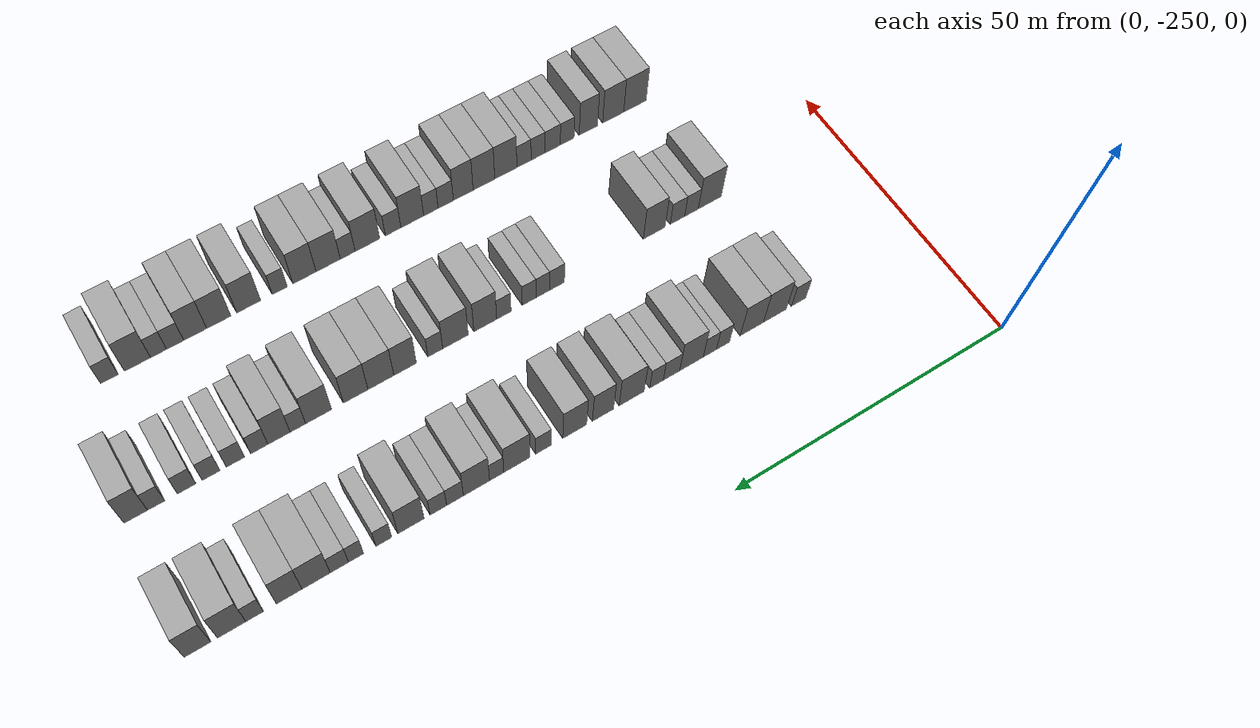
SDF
<sdf version="1.6">
 <world name="default">
  <model name="building_43">
   <static>1</static>
   <pose>25.0000 -226.1350 0 0.000000 0.000000 0.000000</pose>
   <link name="link">
    <pose>0 0 3.00 0 0 0</pose>
    <collision name="collision"><geometry><box><size>10.0000 2.7282 6.0000</size></box></geometry></collision>
    <visual name="visual">
     <cast_shadows>0</cast_shadows>
     <geometry><box><size>10.0000 2.7282 6.0000</size></box></geometry>
     <material>
      <script>
       <uri>model://grey_wall/materials/scripts</uri>
       <uri>model://grey_wall/materials/textures</uri>
       <name>vrc/grey_wall</name>
      </script>
     </material>
    </visual>
   </link>
  </model>
  <model name="building_44">
   <static>1</static>
   <pose>25.0000 -221.6078 0 0.000000 0.000000 0.000000</pose>
   <link name="link">
    <pose>0 0 4.50 0 0 0</pose>
    <collision name="collision"><geometry><box><size>10.0000 4.3262 9.0000</size></box></geometry></collision>
    <visual name="visual">
     <cast_shadows>0</cast_shadows>
     <geometry><box><size>10.0000 4.3262 9.0000</size></box></geometry>
     <material>
      <script>
       <uri>model://grey_wall/materials/scripts</uri>
       <uri>model://grey_wall/materials/textures</uri>
       <name>vrc/grey_wall</name>
      </script>
     </material>
    </visual>
   </link>
  </model>
  <model name="building_45">
   <static>1</static>
   <pose>25.0000 -217.2726 0 0.000000 0.000000 0.000000</pose>
   <link name="link">
    <pose>0 0 4.50 0 0 0</pose>
    <collision name="collision"><geometry><box><size>10.0000 4.3444 9.0000</size></box></geometry></collision>
    <visual name="visual">
     <cast_shadows>0</cast_shadows>
     <geometry><box><size>10.0000 4.3444 9.0000</size></box></geometry>
     <material>
      <script>
       <uri>model://grey_wall/materials/scripts</uri>
       <uri>model://grey_wall/materials/textures</uri>
       <name>vrc/grey_wall</name>
      </script>
     </material>
    </visual>
   </link>
  </model>
  <model name="building_46">
   <static>1</static>
   <pose>25.0000 -211.8780 0 0.000000 0.000000 0.000000</pose>
   <link name="link">
    <pose>0 0 3.00 0 0 0</pose>
    <collision name="collision"><geometry><box><size>10.0000 2.4448 6.0000</size></box></geometry></collision>
    <visual name="visual">
     <cast_shadows>0</cast_shadows>
     <geometry><box><size>10.0000 2.4448 6.0000</size></box></geometry>
     <material>
      <script>
       <uri>model://grey_wall/materials/scripts</uri>
       <uri>model://grey_wall/materials/textures</uri>
       <name>vrc/grey_wall</name>
      </script>
     </material>
    </visual>
   </link>
  </model>
  <model name="building_47">
   <static>1</static>
   <pose>25.0000 -209.4439 0 0.000000 0.000000 0.000000</pose>
   <link name="link">
    <pose>0 0 3.00 0 0 0</pose>
    <collision name="collision"><geometry><box><size>10.0000 2.4233 6.0000</size></box></geometry></collision>
    <visual name="visual">
     <cast_shadows>0</cast_shadows>
     <geometry><box><size>10.0000 2.4233 6.0000</size></box></geometry>
     <material>
      <script>
       <uri>model://grey_wall/materials/scripts</uri>
       <uri>model://grey_wall/materials/textures</uri>
       <name>vrc/grey_wall</name>
      </script>
     </material>
    </visual>
   </link>
  </model>
  <model name="building_48">
   <static>1</static>
   <pose>25.0000 -206.0622 0 0.000000 0.000000 0.000000</pose>
   <link name="link">
    <pose>0 0 4.50 0 0 0</pose>
    <collision name="collision"><geometry><box><size>10.0000 4.3401 9.0000</size></box></geometry></collision>
    <visual name="visual">
     <cast_shadows>0</cast_shadows>
     <geometry><box><size>10.0000 4.3401 9.0000</size></box></geometry>
     <material>
      <script>
       <uri>model://grey_wall/materials/scripts</uri>
       <uri>model://grey_wall/materials/textures</uri>
       <name>vrc/grey_wall</name>
      </script>
     </material>
    </visual>
   </link>
  </model>
  <model name="building_49">
   <static>1</static>
   <pose>25.0000 -202.4076 0 0.000000 0.000000 0.000000</pose>
   <link name="link">
    <pose>0 0 3.00 0 0 0</pose>
    <collision name="collision"><geometry><box><size>10.0000 2.9692 6.0000</size></box></geometry></collision>
    <visual name="visual">
     <cast_shadows>0</cast_shadows>
     <geometry><box><size>10.0000 2.9692 6.0000</size></box></geometry>
     <material>
      <script>
       <uri>model://grey_wall/materials/scripts</uri>
       <uri>model://grey_wall/materials/textures</uri>
       <name>vrc/grey_wall</name>
      </script>
     </material>
    </visual>
   </link>
  </model>
  <model name="building_50">
   <static>1</static>
   <pose>25.0000 -199.6993 0 0.000000 0.000000 0.000000</pose>
   <link name="link">
    <pose>0 0 3.00 0 0 0</pose>
    <collision name="collision"><geometry><box><size>10.0000 2.4473 6.0000</size></box></geometry></collision>
    <visual name="visual">
     <cast_shadows>0</cast_shadows>
     <geometry><box><size>10.0000 2.4473 6.0000</size></box></geometry>
     <material>
      <script>
       <uri>model://grey_wall/materials/scripts</uri>
       <uri>model://grey_wall/materials/textures</uri>
       <name>vrc/grey_wall</name>
      </script>
     </material>
    </visual>
   </link>
  </model>
  <model name="building_51">
   <static>1</static>
   <pose>25.0000 -195.2450 0 0.000000 0.000000 0.000000</pose>
   <link name="link">
    <pose>0 0 4.50 0 0 0</pose>
    <collision name="collision"><geometry><box><size>10.0000 4.4613 9.0000</size></box></geometry></collision>
    <visual name="visual">
     <cast_shadows>0</cast_shadows>
     <geometry><box><size>10.0000 4.4613 9.0000</size></box></geometry>
     <material>
      <script>
       <uri>model://grey_wall/materials/scripts</uri>
       <uri>model://grey_wall/materials/textures</uri>
       <name>vrc/grey_wall</name>
      </script>
     </material>
    </visual>
   </link>
  </model>
  <model name="building_52">
   <static>1</static>
   <pose>25.0000 -190.1384 0 0.000000 0.000000 0.000000</pose>
   <link name="link">
    <pose>0 0 4.50 0 0 0</pose>
    <collision name="collision"><geometry><box><size>10.0000 3.7520 9.0000</size></box></geometry></collision>
    <visual name="visual">
     <cast_shadows>0</cast_shadows>
     <geometry><box><size>10.0000 3.7520 9.0000</size></box></geometry>
     <material>
      <script>
       <uri>model://grey_wall/materials/scripts</uri>
       <uri>model://grey_wall/materials/textures</uri>
       <name>vrc/grey_wall</name>
      </script>
     </material>
    </visual>
   </link>
  </model>
  <model name="building_53">
   <static>1</static>
   <pose>25.0000 -185.1746 0 0.000000 0.000000 0.000000</pose>
   <link name="link">
    <pose>0 0 4.50 0 0 0</pose>
    <collision name="collision"><geometry><box><size>10.0000 4.1755 9.0000</size></box></geometry></collision>
    <visual name="visual">
     <cast_shadows>0</cast_shadows>
     <geometry><box><size>10.0000 4.1755 9.0000</size></box></geometry>
     <material>
      <script>
       <uri>model://grey_wall/materials/scripts</uri>
       <uri>model://grey_wall/materials/textures</uri>
       <name>vrc/grey_wall</name>
      </script>
     </material>
    </visual>
   </link>
  </model>
  <model name="building_54">
   <static>1</static>
   <pose>25.0000 -179.7485 0 0.000000 0.000000 0.000000</pose>
   <link name="link">
    <pose>0 0 3.00 0 0 0</pose>
    <collision name="collision"><geometry><box><size>10.0000 2.6768 6.0000</size></box></geometry></collision>
    <visual name="visual">
     <cast_shadows>0</cast_shadows>
     <geometry><box><size>10.0000 2.6768 6.0000</size></box></geometry>
     <material>
      <script>
       <uri>model://grey_wall/materials/scripts</uri>
       <uri>model://grey_wall/materials/textures</uri>
       <name>vrc/grey_wall</name>
      </script>
     </material>
    </visual>
   </link>
  </model>
  <model name="building_55">
   <static>1</static>
   <pose>25.0000 -175.1819 0 0.000000 0.000000 0.000000</pose>
   <link name="link">
    <pose>0 0 4.50 0 0 0</pose>
    <collision name="collision"><geometry><box><size>10.0000 4.4563 9.0000</size></box></geometry></collision>
    <visual name="visual">
     <cast_shadows>0</cast_shadows>
     <geometry><box><size>10.0000 4.4563 9.0000</size></box></geometry>
     <material>
      <script>
       <uri>model://grey_wall/materials/scripts</uri>
       <uri>model://grey_wall/materials/textures</uri>
       <name>vrc/grey_wall</name>
      </script>
     </material>
    </visual>
   </link>
  </model>
  <model name="building_56">
   <static>1</static>
   <pose>25.0000 -171.7519 0 0.000000 0.000000 0.000000</pose>
   <link name="link">
    <pose>0 0 3.00 0 0 0</pose>
    <collision name="collision"><geometry><box><size>10.0000 2.4038 6.0000</size></box></geometry></collision>
    <visual name="visual">
     <cast_shadows>0</cast_shadows>
     <geometry><box><size>10.0000 2.4038 6.0000</size></box></geometry>
     <material>
      <script>
       <uri>model://grey_wall/materials/scripts</uri>
       <uri>model://grey_wall/materials/textures</uri>
       <name>vrc/grey_wall</name>
      </script>
     </material>
    </visual>
   </link>
  </model>
  <model name="building_57">
   <static>1</static>
   <pose>25.0000 -168.3546 0 0.000000 0.000000 0.000000</pose>
   <link name="link">
    <pose>0 0 4.50 0 0 0</pose>
    <collision name="collision"><geometry><box><size>10.0000 4.3908 9.0000</size></box></geometry></collision>
    <visual name="visual">
     <cast_shadows>0</cast_shadows>
     <geometry><box><size>10.0000 4.3908 9.0000</size></box></geometry>
     <material>
      <script>
       <uri>model://grey_wall/materials/scripts</uri>
       <uri>model://grey_wall/materials/textures</uri>
       <name>vrc/grey_wall</name>
      </script>
     </material>
    </visual>
   </link>
  </model>
  <model name="building_58">
   <static>1</static>
   <pose>25.0000 -164.7590 0 0.000000 0.000000 0.000000</pose>
   <link name="link">
    <pose>0 0 3.00 0 0 0</pose>
    <collision name="collision"><geometry><box><size>10.0000 2.8005 6.0000</size></box></geometry></collision>
    <visual name="visual">
     <cast_shadows>0</cast_shadows>
     <geometry><box><size>10.0000 2.8005 6.0000</size></box></geometry>
     <material>
      <script>
       <uri>model://grey_wall/materials/scripts</uri>
       <uri>model://grey_wall/materials/textures</uri>
       <name>vrc/grey_wall</name>
      </script>
     </material>
    </visual>
   </link>
  </model>
  <model name="building_59">
   <static>1</static>
   <pose>25.0000 -161.9979 0 0.000000 0.000000 0.000000</pose>
   <link name="link">
    <pose>0 0 3.00 0 0 0</pose>
    <collision name="collision"><geometry><box><size>10.0000 2.7217 6.0000</size></box></geometry></collision>
    <visual name="visual">
     <cast_shadows>0</cast_shadows>
     <geometry><box><size>10.0000 2.7217 6.0000</size></box></geometry>
     <material>
      <script>
       <uri>model://grey_wall/materials/scripts</uri>
       <uri>model://grey_wall/materials/textures</uri>
       <name>vrc/grey_wall</name>
      </script>
     </material>
    </visual>
   </link>
  </model>
  <model name="building_60">
   <static>1</static>
   <pose>25.0000 -157.4892 0 0.000000 0.000000 0.000000</pose>
   <link name="link">
    <pose>0 0 4.50 0 0 0</pose>
    <collision name="collision"><geometry><box><size>10.0000 4.2958 9.0000</size></box></geometry></collision>
    <visual name="visual">
     <cast_shadows>0</cast_shadows>
     <geometry><box><size>10.0000 4.2958 9.0000</size></box></geometry>
     <material>
      <script>
       <uri>model://grey_wall/materials/scripts</uri>
       <uri>model://grey_wall/materials/textures</uri>
       <name>vrc/grey_wall</name>
      </script>
     </material>
    </visual>
   </link>
  </model>
  <model name="building_61">
   <static>1</static>
   <pose>25.0000 -153.0648 0 0.000000 0.000000 0.000000</pose>
   <link name="link">
    <pose>0 0 3.00 0 0 0</pose>
    <collision name="collision"><geometry><box><size>10.0000 2.5529 6.0000</size></box></geometry></collision>
    <visual name="visual">
     <cast_shadows>0</cast_shadows>
     <geometry><box><size>10.0000 2.5529 6.0000</size></box></geometry>
     <material>
      <script>
       <uri>model://grey_wall/materials/scripts</uri>
       <uri>model://grey_wall/materials/textures</uri>
       <name>vrc/grey_wall</name>
      </script>
     </material>
    </visual>
   </link>
  </model>
  <model name="building_62">
   <static>1</static>
   <pose>25.0000 -148.5823 0 0.000000 0.000000 0.000000</pose>
   <link name="link">
    <pose>0 0 3.00 0 0 0</pose>
    <collision name="collision"><geometry><box><size>10.0000 2.4120 6.0000</size></box></geometry></collision>
    <visual name="visual">
     <cast_shadows>0</cast_shadows>
     <geometry><box><size>10.0000 2.4120 6.0000</size></box></geometry>
     <material>
      <script>
       <uri>model://grey_wall/materials/scripts</uri>
       <uri>model://grey_wall/materials/textures</uri>
       <name>vrc/grey_wall</name>
      </script>
     </material>
    </visual>
   </link>
  </model>
  <model name="building_63">
   <static>1</static>
   <pose>25.0000 -145.9216 0 0.000000 0.000000 0.000000</pose>
   <link name="link">
    <pose>0 0 3.00 0 0 0</pose>
    <collision name="collision"><geometry><box><size>10.0000 2.9093 6.0000</size></box></geometry></collision>
    <visual name="visual">
     <cast_shadows>0</cast_shadows>
     <geometry><box><size>10.0000 2.9093 6.0000</size></box></geometry>
     <material>
      <script>
       <uri>model://grey_wall/materials/scripts</uri>
       <uri>model://grey_wall/materials/textures</uri>
       <name>vrc/grey_wall</name>
      </script>
     </material>
    </visual>
   </link>
  </model>
  <model name="building_64">
   <static>1</static>
   <pose>25.0000 -142.2396 0 0.000000 0.000000 0.000000</pose>
   <link name="link">
    <pose>0 0 4.50 0 0 0</pose>
    <collision name="collision"><geometry><box><size>10.0000 4.4547 9.0000</size></box></geometry></collision>
    <visual name="visual">
     <cast_shadows>0</cast_shadows>
     <geometry><box><size>10.0000 4.4547 9.0000</size></box></geometry>
     <material>
      <script>
       <uri>model://grey_wall/materials/scripts</uri>
       <uri>model://grey_wall/materials/textures</uri>
       <name>vrc/grey_wall</name>
      </script>
     </material>
    </visual>
   </link>
  </model>
  <model name="building_65">
   <static>1</static>
   <pose>25.0000 -138.0126 0 0.000000 0.000000 0.000000</pose>
   <link name="link">
    <pose>0 0 4.50 0 0 0</pose>
    <collision name="collision"><geometry><box><size>10.0000 3.9993 9.0000</size></box></geometry></collision>
    <visual name="visual">
     <cast_shadows>0</cast_shadows>
     <geometry><box><size>10.0000 3.9993 9.0000</size></box></geometry>
     <material>
      <script>
       <uri>model://grey_wall/materials/scripts</uri>
       <uri>model://grey_wall/materials/textures</uri>
       <name>vrc/grey_wall</name>
      </script>
     </material>
    </visual>
   </link>
  </model>
  <model name="building_66">
   <static>1</static>
   <pose>25.0000 -132.6591 0 0.000000 0.000000 0.000000</pose>
   <link name="link">
    <pose>0 0 3.00 0 0 0</pose>
    <collision name="collision"><geometry><box><size>10.0000 2.7078 6.0000</size></box></geometry></collision>
    <visual name="visual">
     <cast_shadows>0</cast_shadows>
     <geometry><box><size>10.0000 2.7078 6.0000</size></box></geometry>
     <material>
      <script>
       <uri>model://grey_wall/materials/scripts</uri>
       <uri>model://grey_wall/materials/textures</uri>
       <name>vrc/grey_wall</name>
      </script>
     </material>
    </visual>
   </link>
  </model>
  <model name="building_67">
   <static>1</static>
   <pose>25.0000 -129.1272 0 0.000000 0.000000 0.000000</pose>
   <link name="link">
    <pose>0 0 4.50 0 0 0</pose>
    <collision name="collision"><geometry><box><size>10.0000 4.3559 9.0000</size></box></geometry></collision>
    <visual name="visual">
     <cast_shadows>0</cast_shadows>
     <geometry><box><size>10.0000 4.3559 9.0000</size></box></geometry>
     <material>
      <script>
       <uri>model://grey_wall/materials/scripts</uri>
       <uri>model://grey_wall/materials/textures</uri>
       <name>vrc/grey_wall</name>
      </script>
     </material>
    </visual>
   </link>
  </model>
  <model name="building_68">
   <static>1</static>
   <pose>25.0000 -123.9400 0 0.000000 0.000000 0.000000</pose>
   <link name="link">
    <pose>0 0 4.50 0 0 0</pose>
    <collision name="collision"><geometry><box><size>10.0000 4.0185 9.0000</size></box></geometry></collision>
    <visual name="visual">
     <cast_shadows>0</cast_shadows>
     <geometry><box><size>10.0000 4.0185 9.0000</size></box></geometry>
     <material>
      <script>
       <uri>model://grey_wall/materials/scripts</uri>
       <uri>model://grey_wall/materials/textures</uri>
       <name>vrc/grey_wall</name>
      </script>
     </material>
    </visual>
   </link>
  </model>
  <model name="building_230">
   <static>1</static>
   <pose>47.0000 -224.7987 0 0.000000 0.000000 0.000000</pose>
   <link name="link">
    <pose>0 0 4.50 0 0 0</pose>
    <collision name="collision"><geometry><box><size>10.0000 4.4797 9.0000</size></box></geometry></collision>
    <visual name="visual">
     <cast_shadows>0</cast_shadows>
     <geometry><box><size>10.0000 4.4797 9.0000</size></box></geometry>
     <material>
      <script>
       <uri>model://grey_wall/materials/scripts</uri>
       <uri>model://grey_wall/materials/textures</uri>
       <name>vrc/grey_wall</name>
      </script>
     </material>
    </visual>
   </link>
  </model>
  <model name="building_231">
   <static>1</static>
   <pose>47.0000 -221.2381 0 0.000000 0.000000 0.000000</pose>
   <link name="link">
    <pose>0 0 3.00 0 0 0</pose>
    <collision name="collision"><geometry><box><size>10.0000 2.6415 6.0000</size></box></geometry></collision>
    <visual name="visual">
     <cast_shadows>0</cast_shadows>
     <geometry><box><size>10.0000 2.6415 6.0000</size></box></geometry>
     <material>
      <script>
       <uri>model://grey_wall/materials/scripts</uri>
       <uri>model://grey_wall/materials/textures</uri>
       <name>vrc/grey_wall</name>
      </script>
     </material>
    </visual>
   </link>
  </model>
  <model name="building_232">
   <static>1</static>
   <pose>47.0000 -218.5318 0 0.000000 0.000000 0.000000</pose>
   <link name="link">
    <pose>0 0 3.00 0 0 0</pose>
    <collision name="collision"><geometry><box><size>10.0000 2.7711 6.0000</size></box></geometry></collision>
    <visual name="visual">
     <cast_shadows>0</cast_shadows>
     <geometry><box><size>10.0000 2.7711 6.0000</size></box></geometry>
     <material>
      <script>
       <uri>model://grey_wall/materials/scripts</uri>
       <uri>model://grey_wall/materials/textures</uri>
       <name>vrc/grey_wall</name>
      </script>
     </material>
    </visual>
   </link>
  </model>
  <model name="building_233">
   <static>1</static>
   <pose>47.0000 -214.0724 0 0.000000 0.000000 0.000000</pose>
   <link name="link">
    <pose>0 0 4.50 0 0 0</pose>
    <collision name="collision"><geometry><box><size>10.0000 4.1477 9.0000</size></box></geometry></collision>
    <visual name="visual">
     <cast_shadows>0</cast_shadows>
     <geometry><box><size>10.0000 4.1477 9.0000</size></box></geometry>
     <material>
      <script>
       <uri>model://grey_wall/materials/scripts</uri>
       <uri>model://grey_wall/materials/textures</uri>
       <name>vrc/grey_wall</name>
      </script>
     </material>
    </visual>
   </link>
  </model>
  <model name="building_234">
   <static>1</static>
   <pose>47.0000 -195.8662 0 0.000000 0.000000 0.000000</pose>
   <link name="link">
    <pose>0 0 3.00 0 0 0</pose>
    <collision name="collision"><geometry><box><size>10.0000 2.7549 6.0000</size></box></geometry></collision>
    <visual name="visual">
     <cast_shadows>0</cast_shadows>
     <geometry><box><size>10.0000 2.7549 6.0000</size></box></geometry>
     <material>
      <script>
       <uri>model://grey_wall/materials/scripts</uri>
       <uri>model://grey_wall/materials/textures</uri>
       <name>vrc/grey_wall</name>
      </script>
     </material>
    </visual>
   </link>
  </model>
  <model name="building_235">
   <static>1</static>
   <pose>47.0000 -193.2576 0 0.000000 0.000000 0.000000</pose>
   <link name="link">
    <pose>0 0 3.00 0 0 0</pose>
    <collision name="collision"><geometry><box><size>10.0000 2.4623 6.0000</size></box></geometry></collision>
    <visual name="visual">
     <cast_shadows>0</cast_shadows>
     <geometry><box><size>10.0000 2.4623 6.0000</size></box></geometry>
     <material>
      <script>
       <uri>model://grey_wall/materials/scripts</uri>
       <uri>model://grey_wall/materials/textures</uri>
       <name>vrc/grey_wall</name>
      </script>
     </material>
    </visual>
   </link>
  </model>
  <model name="building_236">
   <static>1</static>
   <pose>47.0000 -190.7903 0 0.000000 0.000000 0.000000</pose>
   <link name="link">
    <pose>0 0 3.00 0 0 0</pose>
    <collision name="collision"><geometry><box><size>10.0000 2.4723 6.0000</size></box></geometry></collision>
    <visual name="visual">
     <cast_shadows>0</cast_shadows>
     <geometry><box><size>10.0000 2.4723 6.0000</size></box></geometry>
     <material>
      <script>
       <uri>model://grey_wall/materials/scripts</uri>
       <uri>model://grey_wall/materials/textures</uri>
       <name>vrc/grey_wall</name>
      </script>
     </material>
    </visual>
   </link>
  </model>
  <model name="building_237">
   <static>1</static>
   <pose>47.0000 -186.2572 0 0.000000 0.000000 0.000000</pose>
   <link name="link">
    <pose>0 0 3.00 0 0 0</pose>
    <collision name="collision"><geometry><box><size>10.0000 2.5938 6.0000</size></box></geometry></collision>
    <visual name="visual">
     <cast_shadows>0</cast_shadows>
     <geometry><box><size>10.0000 2.5938 6.0000</size></box></geometry>
     <material>
      <script>
       <uri>model://grey_wall/materials/scripts</uri>
       <uri>model://grey_wall/materials/textures</uri>
       <name>vrc/grey_wall</name>
      </script>
     </material>
    </visual>
   </link>
  </model>
  <model name="building_238">
   <static>1</static>
   <pose>47.0000 -182.9309 0 0.000000 0.000000 0.000000</pose>
   <link name="link">
    <pose>0 0 4.50 0 0 0</pose>
    <collision name="collision"><geometry><box><size>10.0000 4.0588 9.0000</size></box></geometry></collision>
    <visual name="visual">
     <cast_shadows>0</cast_shadows>
     <geometry><box><size>10.0000 4.0588 9.0000</size></box></geometry>
     <material>
      <script>
       <uri>model://grey_wall/materials/scripts</uri>
       <uri>model://grey_wall/materials/textures</uri>
       <name>vrc/grey_wall</name>
      </script>
     </material>
    </visual>
   </link>
  </model>
  <model name="building_239">
   <static>1</static>
   <pose>47.0000 -177.6561 0 0.000000 0.000000 0.000000</pose>
   <link name="link">
    <pose>0 0 4.50 0 0 0</pose>
    <collision name="collision"><geometry><box><size>10.0000 4.4907 9.0000</size></box></geometry></collision>
    <visual name="visual">
     <cast_shadows>0</cast_shadows>
     <geometry><box><size>10.0000 4.4907 9.0000</size></box></geometry>
     <material>
      <script>
       <uri>model://grey_wall/materials/scripts</uri>
       <uri>model://grey_wall/materials/textures</uri>
       <name>vrc/grey_wall</name>
      </script>
     </material>
    </visual>
   </link>
  </model>
  <model name="building_240">
   <static>1</static>
   <pose>47.0000 -174.1131 0 0.000000 0.000000 0.000000</pose>
   <link name="link">
    <pose>0 0 3.00 0 0 0</pose>
    <collision name="collision"><geometry><box><size>10.0000 2.5953 6.0000</size></box></geometry></collision>
    <visual name="visual">
     <cast_shadows>0</cast_shadows>
     <geometry><box><size>10.0000 2.5953 6.0000</size></box></geometry>
     <material>
      <script>
       <uri>model://grey_wall/materials/scripts</uri>
       <uri>model://grey_wall/materials/textures</uri>
       <name>vrc/grey_wall</name>
      </script>
     </material>
    </visual>
   </link>
  </model>
  <model name="building_241">
   <static>1</static>
   <pose>47.0000 -168.8720 0 0.000000 0.000000 0.000000</pose>
   <link name="link">
    <pose>0 0 4.50 0 0 0</pose>
    <collision name="collision"><geometry><box><size>10.0000 3.8868 9.0000</size></box></geometry></collision>
    <visual name="visual">
     <cast_shadows>0</cast_shadows>
     <geometry><box><size>10.0000 3.8868 9.0000</size></box></geometry>
     <material>
      <script>
       <uri>model://grey_wall/materials/scripts</uri>
       <uri>model://grey_wall/materials/textures</uri>
       <name>vrc/grey_wall</name>
      </script>
     </material>
    </visual>
   </link>
  </model>
  <model name="building_242">
   <static>1</static>
   <pose>47.0000 -164.7085 0 0.000000 0.000000 0.000000</pose>
   <link name="link">
    <pose>0 0 4.50 0 0 0</pose>
    <collision name="collision"><geometry><box><size>10.0000 4.4403 9.0000</size></box></geometry></collision>
    <visual name="visual">
     <cast_shadows>0</cast_shadows>
     <geometry><box><size>10.0000 4.4403 9.0000</size></box></geometry>
     <material>
      <script>
       <uri>model://grey_wall/materials/scripts</uri>
       <uri>model://grey_wall/materials/textures</uri>
       <name>vrc/grey_wall</name>
      </script>
     </material>
    </visual>
   </link>
  </model>
  <model name="building_243">
   <static>1</static>
   <pose>47.0000 -160.4121 0 0.000000 0.000000 0.000000</pose>
   <link name="link">
    <pose>0 0 4.50 0 0 0</pose>
    <collision name="collision"><geometry><box><size>10.0000 4.1526 9.0000</size></box></geometry></collision>
    <visual name="visual">
     <cast_shadows>0</cast_shadows>
     <geometry><box><size>10.0000 4.1526 9.0000</size></box></geometry>
     <material>
      <script>
       <uri>model://grey_wall/materials/scripts</uri>
       <uri>model://grey_wall/materials/textures</uri>
       <name>vrc/grey_wall</name>
      </script>
     </material>
    </visual>
   </link>
  </model>
  <model name="building_244">
   <static>1</static>
   <pose>47.0000 -154.1732 0 0.000000 0.000000 0.000000</pose>
   <link name="link">
    <pose>0 0 4.50 0 0 0</pose>
    <collision name="collision"><geometry><box><size>10.0000 4.3251 9.0000</size></box></geometry></collision>
    <visual name="visual">
     <cast_shadows>0</cast_shadows>
     <geometry><box><size>10.0000 4.3251 9.0000</size></box></geometry>
     <material>
      <script>
       <uri>model://grey_wall/materials/scripts</uri>
       <uri>model://grey_wall/materials/textures</uri>
       <name>vrc/grey_wall</name>
      </script>
     </material>
    </visual>
   </link>
  </model>
  <model name="building_245">
   <static>1</static>
   <pose>47.0000 -150.7242 0 0.000000 0.000000 0.000000</pose>
   <link name="link">
    <pose>0 0 3.00 0 0 0</pose>
    <collision name="collision"><geometry><box><size>10.0000 2.5729 6.0000</size></box></geometry></collision>
    <visual name="visual">
     <cast_shadows>0</cast_shadows>
     <geometry><box><size>10.0000 2.5729 6.0000</size></box></geometry>
     <material>
      <script>
       <uri>model://grey_wall/materials/scripts</uri>
       <uri>model://grey_wall/materials/textures</uri>
       <name>vrc/grey_wall</name>
      </script>
     </material>
    </visual>
   </link>
  </model>
  <model name="building_246">
   <static>1</static>
   <pose>47.0000 -147.6063 0 0.000000 0.000000 0.000000</pose>
   <link name="link">
    <pose>0 0 4.50 0 0 0</pose>
    <collision name="collision"><geometry><box><size>10.0000 3.6629 9.0000</size></box></geometry></collision>
    <visual name="visual">
     <cast_shadows>0</cast_shadows>
     <geometry><box><size>10.0000 3.6629 9.0000</size></box></geometry>
     <material>
      <script>
       <uri>model://grey_wall/materials/scripts</uri>
       <uri>model://grey_wall/materials/textures</uri>
       <name>vrc/grey_wall</name>
      </script>
     </material>
    </visual>
   </link>
  </model>
  <model name="building_247">
   <static>1</static>
   <pose>47.0000 -144.3744 0 0.000000 0.000000 0.000000</pose>
   <link name="link">
    <pose>0 0 3.00 0 0 0</pose>
    <collision name="collision"><geometry><box><size>10.0000 2.8009 6.0000</size></box></geometry></collision>
    <visual name="visual">
     <cast_shadows>0</cast_shadows>
     <geometry><box><size>10.0000 2.8009 6.0000</size></box></geometry>
     <material>
      <script>
       <uri>model://grey_wall/materials/scripts</uri>
       <uri>model://grey_wall/materials/textures</uri>
       <name>vrc/grey_wall</name>
      </script>
     </material>
    </visual>
   </link>
  </model>
  <model name="building_248">
   <static>1</static>
   <pose>47.0000 -140.4943 0 0.000000 0.000000 0.000000</pose>
   <link name="link">
    <pose>0 0 3.00 0 0 0</pose>
    <collision name="collision"><geometry><box><size>10.0000 2.9593 6.0000</size></box></geometry></collision>
    <visual name="visual">
     <cast_shadows>0</cast_shadows>
     <geometry><box><size>10.0000 2.9593 6.0000</size></box></geometry>
     <material>
      <script>
       <uri>model://grey_wall/materials/scripts</uri>
       <uri>model://grey_wall/materials/textures</uri>
       <name>vrc/grey_wall</name>
      </script>
     </material>
    </visual>
   </link>
  </model>
  <model name="building_249">
   <static>1</static>
   <pose>47.0000 -136.5808 0 0.000000 0.000000 0.000000</pose>
   <link name="link">
    <pose>0 0 3.00 0 0 0</pose>
    <collision name="collision"><geometry><box><size>10.0000 2.8676 6.0000</size></box></geometry></collision>
    <visual name="visual">
     <cast_shadows>0</cast_shadows>
     <geometry><box><size>10.0000 2.8676 6.0000</size></box></geometry>
     <material>
      <script>
       <uri>model://grey_wall/materials/scripts</uri>
       <uri>model://grey_wall/materials/textures</uri>
       <name>vrc/grey_wall</name>
      </script>
     </material>
    </visual>
   </link>
  </model>
  <model name="building_250">
   <static>1</static>
   <pose>47.0000 -132.6794 0 0.000000 0.000000 0.000000</pose>
   <link name="link">
    <pose>0 0 3.00 0 0 0</pose>
    <collision name="collision"><geometry><box><size>10.0000 2.9351 6.0000</size></box></geometry></collision>
    <visual name="visual">
     <cast_shadows>0</cast_shadows>
     <geometry><box><size>10.0000 2.9351 6.0000</size></box></geometry>
     <material>
      <script>
       <uri>model://grey_wall/materials/scripts</uri>
       <uri>model://grey_wall/materials/textures</uri>
       <name>vrc/grey_wall</name>
      </script>
     </material>
    </visual>
   </link>
  </model>
  <model name="building_251">
   <static>1</static>
   <pose>47.0000 -127.8619 0 0.000000 0.000000 0.000000</pose>
   <link name="link">
    <pose>0 0 3.00 0 0 0</pose>
    <collision name="collision"><geometry><box><size>10.0000 2.7000 6.0000</size></box></geometry></collision>
    <visual name="visual">
     <cast_shadows>0</cast_shadows>
     <geometry><box><size>10.0000 2.7000 6.0000</size></box></geometry>
     <material>
      <script>
       <uri>model://grey_wall/materials/scripts</uri>
       <uri>model://grey_wall/materials/textures</uri>
       <name>vrc/grey_wall</name>
      </script>
     </material>
    </visual>
   </link>
  </model>
  <model name="building_252">
   <static>1</static>
   <pose>47.0000 -124.6702 0 0.000000 0.000000 0.000000</pose>
   <link name="link">
    <pose>0 0 4.50 0 0 0</pose>
    <collision name="collision"><geometry><box><size>10.0000 3.6834 9.0000</size></box></geometry></collision>
    <visual name="visual">
     <cast_shadows>0</cast_shadows>
     <geometry><box><size>10.0000 3.6834 9.0000</size></box></geometry>
     <material>
      <script>
       <uri>model://grey_wall/materials/scripts</uri>
       <uri>model://grey_wall/materials/textures</uri>
       <name>vrc/grey_wall</name>
      </script>
     </material>
    </visual>
   </link>
  </model>
  <model name="building_421">
   <static>1</static>
   <pose>69.0000 -225.0023 0 0.000000 0.000000 0.000000</pose>
   <link name="link">
    <pose>0 0 4.50 0 0 0</pose>
    <collision name="collision"><geometry><box><size>10.0000 4.4633 9.0000</size></box></geometry></collision>
    <visual name="visual">
     <cast_shadows>0</cast_shadows>
     <geometry><box><size>10.0000 4.4633 9.0000</size></box></geometry>
     <material>
      <script>
       <uri>model://grey_wall/materials/scripts</uri>
       <uri>model://grey_wall/materials/textures</uri>
       <name>vrc/grey_wall</name>
      </script>
     </material>
    </visual>
   </link>
  </model>
  <model name="building_422">
   <static>1</static>
   <pose>69.0000 -220.6876 0 0.000000 0.000000 0.000000</pose>
   <link name="link">
    <pose>0 0 4.50 0 0 0</pose>
    <collision name="collision"><geometry><box><size>10.0000 4.1661 9.0000</size></box></geometry></collision>
    <visual name="visual">
     <cast_shadows>0</cast_shadows>
     <geometry><box><size>10.0000 4.1661 9.0000</size></box></geometry>
     <material>
      <script>
       <uri>model://grey_wall/materials/scripts</uri>
       <uri>model://grey_wall/materials/textures</uri>
       <name>vrc/grey_wall</name>
      </script>
     </material>
    </visual>
   </link>
  </model>
  <model name="building_423">
   <static>1</static>
   <pose>69.0000 -215.8008 0 0.000000 0.000000 0.000000</pose>
   <link name="link">
    <pose>0 0 4.50 0 0 0</pose>
    <collision name="collision"><geometry><box><size>10.0000 3.6074 9.0000</size></box></geometry></collision>
    <visual name="visual">
     <cast_shadows>0</cast_shadows>
     <geometry><box><size>10.0000 3.6074 9.0000</size></box></geometry>
     <material>
      <script>
       <uri>model://grey_wall/materials/scripts</uri>
       <uri>model://grey_wall/materials/textures</uri>
       <name>vrc/grey_wall</name>
      </script>
     </material>
    </visual>
   </link>
  </model>
  <model name="building_424">
   <static>1</static>
   <pose>69.0000 -211.6582 0 0.000000 0.000000 0.000000</pose>
   <link name="link">
    <pose>0 0 3.00 0 0 0</pose>
    <collision name="collision"><geometry><box><size>10.0000 2.6779 6.0000</size></box></geometry></collision>
    <visual name="visual">
     <cast_shadows>0</cast_shadows>
     <geometry><box><size>10.0000 2.6779 6.0000</size></box></geometry>
     <material>
      <script>
       <uri>model://grey_wall/materials/scripts</uri>
       <uri>model://grey_wall/materials/textures</uri>
       <name>vrc/grey_wall</name>
      </script>
     </material>
    </visual>
   </link>
  </model>
  <model name="building_425">
   <static>1</static>
   <pose>69.0000 -208.8410 0 0.000000 0.000000 0.000000</pose>
   <link name="link">
    <pose>0 0 3.00 0 0 0</pose>
    <collision name="collision"><geometry><box><size>10.0000 2.9564 6.0000</size></box></geometry></collision>
    <visual name="visual">
     <cast_shadows>0</cast_shadows>
     <geometry><box><size>10.0000 2.9564 6.0000</size></box></geometry>
     <material>
      <script>
       <uri>model://grey_wall/materials/scripts</uri>
       <uri>model://grey_wall/materials/textures</uri>
       <name>vrc/grey_wall</name>
      </script>
     </material>
    </visual>
   </link>
  </model>
  <model name="building_426">
   <static>1</static>
   <pose>69.0000 -206.0336 0 0.000000 0.000000 0.000000</pose>
   <link name="link">
    <pose>0 0 3.00 0 0 0</pose>
    <collision name="collision"><geometry><box><size>10.0000 2.6584 6.0000</size></box></geometry></collision>
    <visual name="visual">
     <cast_shadows>0</cast_shadows>
     <geometry><box><size>10.0000 2.6584 6.0000</size></box></geometry>
     <material>
      <script>
       <uri>model://grey_wall/materials/scripts</uri>
       <uri>model://grey_wall/materials/textures</uri>
       <name>vrc/grey_wall</name>
      </script>
     </material>
    </visual>
   </link>
  </model>
  <model name="building_427">
   <static>1</static>
   <pose>69.0000 -203.3512 0 0.000000 0.000000 0.000000</pose>
   <link name="link">
    <pose>0 0 3.00 0 0 0</pose>
    <collision name="collision"><geometry><box><size>10.0000 2.7062 6.0000</size></box></geometry></collision>
    <visual name="visual">
     <cast_shadows>0</cast_shadows>
     <geometry><box><size>10.0000 2.7062 6.0000</size></box></geometry>
     <material>
      <script>
       <uri>model://grey_wall/materials/scripts</uri>
       <uri>model://grey_wall/materials/textures</uri>
       <name>vrc/grey_wall</name>
      </script>
     </material>
    </visual>
   </link>
  </model>
  <model name="building_428">
   <static>1</static>
   <pose>69.0000 -199.8991 0 0.000000 0.000000 0.000000</pose>
   <link name="link">
    <pose>0 0 4.50 0 0 0</pose>
    <collision name="collision"><geometry><box><size>10.0000 4.1981 9.0000</size></box></geometry></collision>
    <visual name="visual">
     <cast_shadows>0</cast_shadows>
     <geometry><box><size>10.0000 4.1981 9.0000</size></box></geometry>
     <material>
      <script>
       <uri>model://grey_wall/materials/scripts</uri>
       <uri>model://grey_wall/materials/textures</uri>
       <name>vrc/grey_wall</name>
      </script>
     </material>
    </visual>
   </link>
  </model>
  <model name="building_429">
   <static>1</static>
   <pose>69.0000 -195.7734 0 0.000000 0.000000 0.000000</pose>
   <link name="link">
    <pose>0 0 4.50 0 0 0</pose>
    <collision name="collision"><geometry><box><size>10.0000 4.0534 9.0000</size></box></geometry></collision>
    <visual name="visual">
     <cast_shadows>0</cast_shadows>
     <geometry><box><size>10.0000 4.0534 9.0000</size></box></geometry>
     <material>
      <script>
       <uri>model://grey_wall/materials/scripts</uri>
       <uri>model://grey_wall/materials/textures</uri>
       <name>vrc/grey_wall</name>
      </script>
     </material>
    </visual>
   </link>
  </model>
  <model name="building_430">
   <static>1</static>
   <pose>69.0000 -191.9109 0 0.000000 0.000000 0.000000</pose>
   <link name="link">
    <pose>0 0 4.50 0 0 0</pose>
    <collision name="collision"><geometry><box><size>10.0000 3.6714 9.0000</size></box></geometry></collision>
    <visual name="visual">
     <cast_shadows>0</cast_shadows>
     <geometry><box><size>10.0000 3.6714 9.0000</size></box></geometry>
     <material>
      <script>
       <uri>model://grey_wall/materials/scripts</uri>
       <uri>model://grey_wall/materials/textures</uri>
       <name>vrc/grey_wall</name>
      </script>
     </material>
    </visual>
   </link>
  </model>
  <model name="building_431">
   <static>1</static>
   <pose>69.0000 -188.6621 0 0.000000 0.000000 0.000000</pose>
   <link name="link">
    <pose>0 0 3.00 0 0 0</pose>
    <collision name="collision"><geometry><box><size>10.0000 2.8263 6.0000</size></box></geometry></collision>
    <visual name="visual">
     <cast_shadows>0</cast_shadows>
     <geometry><box><size>10.0000 2.8263 6.0000</size></box></geometry>
     <material>
      <script>
       <uri>model://grey_wall/materials/scripts</uri>
       <uri>model://grey_wall/materials/textures</uri>
       <name>vrc/grey_wall</name>
      </script>
     </material>
    </visual>
   </link>
  </model>
  <model name="building_432">
   <static>1</static>
   <pose>69.0000 -185.9165 0 0.000000 0.000000 0.000000</pose>
   <link name="link">
    <pose>0 0 3.00 0 0 0</pose>
    <collision name="collision"><geometry><box><size>10.0000 2.6648 6.0000</size></box></geometry></collision>
    <visual name="visual">
     <cast_shadows>0</cast_shadows>
     <geometry><box><size>10.0000 2.6648 6.0000</size></box></geometry>
     <material>
      <script>
       <uri>model://grey_wall/materials/scripts</uri>
       <uri>model://grey_wall/materials/textures</uri>
       <name>vrc/grey_wall</name>
      </script>
     </material>
    </visual>
   </link>
  </model>
  <model name="building_433">
   <static>1</static>
   <pose>69.0000 -182.5091 0 0.000000 0.000000 0.000000</pose>
   <link name="link">
    <pose>0 0 4.50 0 0 0</pose>
    <collision name="collision"><geometry><box><size>10.0000 4.1502 9.0000</size></box></geometry></collision>
    <visual name="visual">
     <cast_shadows>0</cast_shadows>
     <geometry><box><size>10.0000 4.1502 9.0000</size></box></geometry>
     <material>
      <script>
       <uri>model://grey_wall/materials/scripts</uri>
       <uri>model://grey_wall/materials/textures</uri>
       <name>vrc/grey_wall</name>
      </script>
     </material>
    </visual>
   </link>
  </model>
  <model name="building_434">
   <static>1</static>
   <pose>69.0000 -179.0233 0 0.000000 0.000000 0.000000</pose>
   <link name="link">
    <pose>0 0 3.00 0 0 0</pose>
    <collision name="collision"><geometry><box><size>10.0000 2.8214 6.0000</size></box></geometry></collision>
    <visual name="visual">
     <cast_shadows>0</cast_shadows>
     <geometry><box><size>10.0000 2.8214 6.0000</size></box></geometry>
     <material>
      <script>
       <uri>model://grey_wall/materials/scripts</uri>
       <uri>model://grey_wall/materials/textures</uri>
       <name>vrc/grey_wall</name>
      </script>
     </material>
    </visual>
   </link>
  </model>
  <model name="building_435">
   <static>1</static>
   <pose>69.0000 -174.4017 0 0.000000 0.000000 0.000000</pose>
   <link name="link">
    <pose>0 0 4.50 0 0 0</pose>
    <collision name="collision"><geometry><box><size>10.0000 4.4218 9.0000</size></box></geometry></collision>
    <visual name="visual">
     <cast_shadows>0</cast_shadows>
     <geometry><box><size>10.0000 4.4218 9.0000</size></box></geometry>
     <material>
      <script>
       <uri>model://grey_wall/materials/scripts</uri>
       <uri>model://grey_wall/materials/textures</uri>
       <name>vrc/grey_wall</name>
      </script>
     </material>
    </visual>
   </link>
  </model>
  <model name="building_436">
   <static>1</static>
   <pose>69.0000 -170.8653 0 0.000000 0.000000 0.000000</pose>
   <link name="link">
    <pose>0 0 3.00 0 0 0</pose>
    <collision name="collision"><geometry><box><size>10.0000 2.6510 6.0000</size></box></geometry></collision>
    <visual name="visual">
     <cast_shadows>0</cast_shadows>
     <geometry><box><size>10.0000 2.6510 6.0000</size></box></geometry>
     <material>
      <script>
       <uri>model://grey_wall/materials/scripts</uri>
       <uri>model://grey_wall/materials/textures</uri>
       <name>vrc/grey_wall</name>
      </script>
     </material>
    </visual>
   </link>
  </model>
  <model name="building_437">
   <static>1</static>
   <pose>69.0000 -167.3984 0 0.000000 0.000000 0.000000</pose>
   <link name="link">
    <pose>0 0 4.50 0 0 0</pose>
    <collision name="collision"><geometry><box><size>10.0000 4.2828 9.0000</size></box></geometry></collision>
    <visual name="visual">
     <cast_shadows>0</cast_shadows>
     <geometry><box><size>10.0000 4.2828 9.0000</size></box></geometry>
     <material>
      <script>
       <uri>model://grey_wall/materials/scripts</uri>
       <uri>model://grey_wall/materials/textures</uri>
       <name>vrc/grey_wall</name>
      </script>
     </material>
    </visual>
   </link>
  </model>
  <model name="building_438">
   <static>1</static>
   <pose>69.0000 -163.2356 0 0.000000 0.000000 0.000000</pose>
   <link name="link">
    <pose>0 0 4.50 0 0 0</pose>
    <collision name="collision"><geometry><box><size>10.0000 4.0429 9.0000</size></box></geometry></collision>
    <visual name="visual">
     <cast_shadows>0</cast_shadows>
     <geometry><box><size>10.0000 4.0429 9.0000</size></box></geometry>
     <material>
      <script>
       <uri>model://grey_wall/materials/scripts</uri>
       <uri>model://grey_wall/materials/textures</uri>
       <name>vrc/grey_wall</name>
      </script>
     </material>
    </visual>
   </link>
  </model>
  <model name="building_439">
   <static>1</static>
   <pose>69.0000 -158.9192 0 0.000000 0.000000 0.000000</pose>
   <link name="link">
    <pose>0 0 3.00 0 0 0</pose>
    <collision name="collision"><geometry><box><size>10.0000 2.5898 6.0000</size></box></geometry></collision>
    <visual name="visual">
     <cast_shadows>0</cast_shadows>
     <geometry><box><size>10.0000 2.5898 6.0000</size></box></geometry>
     <material>
      <script>
       <uri>model://grey_wall/materials/scripts</uri>
       <uri>model://grey_wall/materials/textures</uri>
       <name>vrc/grey_wall</name>
      </script>
     </material>
    </visual>
   </link>
  </model>
  <model name="building_440">
   <static>1</static>
   <pose>69.0000 -153.5731 0 0.000000 0.000000 0.000000</pose>
   <link name="link">
    <pose>0 0 4.50 0 0 0</pose>
    <collision name="collision"><geometry><box><size>10.0000 4.1025 9.0000</size></box></geometry></collision>
    <visual name="visual">
     <cast_shadows>0</cast_shadows>
     <geometry><box><size>10.0000 4.1025 9.0000</size></box></geometry>
     <material>
      <script>
       <uri>model://grey_wall/materials/scripts</uri>
       <uri>model://grey_wall/materials/textures</uri>
       <name>vrc/grey_wall</name>
      </script>
     </material>
    </visual>
   </link>
  </model>
  <model name="building_441">
   <static>1</static>
   <pose>69.0000 -148.4669 0 0.000000 0.000000 0.000000</pose>
   <link name="link">
    <pose>0 0 4.50 0 0 0</pose>
    <collision name="collision"><geometry><box><size>10.0000 4.1098 9.0000</size></box></geometry></collision>
    <visual name="visual">
     <cast_shadows>0</cast_shadows>
     <geometry><box><size>10.0000 4.1098 9.0000</size></box></geometry>
     <material>
      <script>
       <uri>model://grey_wall/materials/scripts</uri>
       <uri>model://grey_wall/materials/textures</uri>
       <name>vrc/grey_wall</name>
      </script>
     </material>
    </visual>
   </link>
  </model>
  <model name="building_442">
   <static>1</static>
   <pose>69.0000 -144.4879 0 0.000000 0.000000 0.000000</pose>
   <link name="link">
    <pose>0 0 4.50 0 0 0</pose>
    <collision name="collision"><geometry><box><size>10.0000 3.8481 9.0000</size></box></geometry></collision>
    <visual name="visual">
     <cast_shadows>0</cast_shadows>
     <geometry><box><size>10.0000 3.8481 9.0000</size></box></geometry>
     <material>
      <script>
       <uri>model://grey_wall/materials/scripts</uri>
       <uri>model://grey_wall/materials/textures</uri>
       <name>vrc/grey_wall</name>
      </script>
     </material>
    </visual>
   </link>
  </model>
  <model name="building_443">
   <static>1</static>
   <pose>69.0000 -141.1334 0 0.000000 0.000000 0.000000</pose>
   <link name="link">
    <pose>0 0 3.00 0 0 0</pose>
    <collision name="collision"><geometry><box><size>10.0000 2.8609 6.0000</size></box></geometry></collision>
    <visual name="visual">
     <cast_shadows>0</cast_shadows>
     <geometry><box><size>10.0000 2.8609 6.0000</size></box></geometry>
     <material>
      <script>
       <uri>model://grey_wall/materials/scripts</uri>
       <uri>model://grey_wall/materials/textures</uri>
       <name>vrc/grey_wall</name>
      </script>
     </material>
    </visual>
   </link>
  </model>
  <model name="building_444">
   <static>1</static>
   <pose>69.0000 -138.3751 0 0.000000 0.000000 0.000000</pose>
   <link name="link">
    <pose>0 0 3.00 0 0 0</pose>
    <collision name="collision"><geometry><box><size>10.0000 2.6559 6.0000</size></box></geometry></collision>
    <visual name="visual">
     <cast_shadows>0</cast_shadows>
     <geometry><box><size>10.0000 2.6559 6.0000</size></box></geometry>
     <material>
      <script>
       <uri>model://grey_wall/materials/scripts</uri>
       <uri>model://grey_wall/materials/textures</uri>
       <name>vrc/grey_wall</name>
      </script>
     </material>
    </visual>
   </link>
  </model>
  <model name="building_445">
   <static>1</static>
   <pose>69.0000 -134.9004 0 0.000000 0.000000 0.000000</pose>
   <link name="link">
    <pose>0 0 4.50 0 0 0</pose>
    <collision name="collision"><geometry><box><size>10.0000 4.2935 9.0000</size></box></geometry></collision>
    <visual name="visual">
     <cast_shadows>0</cast_shadows>
     <geometry><box><size>10.0000 4.2935 9.0000</size></box></geometry>
     <material>
      <script>
       <uri>model://grey_wall/materials/scripts</uri>
       <uri>model://grey_wall/materials/textures</uri>
       <name>vrc/grey_wall</name>
      </script>
     </material>
    </visual>
   </link>
  </model>
  <model name="building_446">
   <static>1</static>
   <pose>69.0000 -130.3149 0 0.000000 0.000000 0.000000</pose>
   <link name="link">
    <pose>0 0 3.00 0 0 0</pose>
    <collision name="collision"><geometry><box><size>10.0000 2.8776 6.0000</size></box></geometry></collision>
    <visual name="visual">
     <cast_shadows>0</cast_shadows>
     <geometry><box><size>10.0000 2.8776 6.0000</size></box></geometry>
     <material>
      <script>
       <uri>model://grey_wall/materials/scripts</uri>
       <uri>model://grey_wall/materials/textures</uri>
       <name>vrc/grey_wall</name>
      </script>
     </material>
    </visual>
   </link>
  </model>
 </world>
</sdf>
